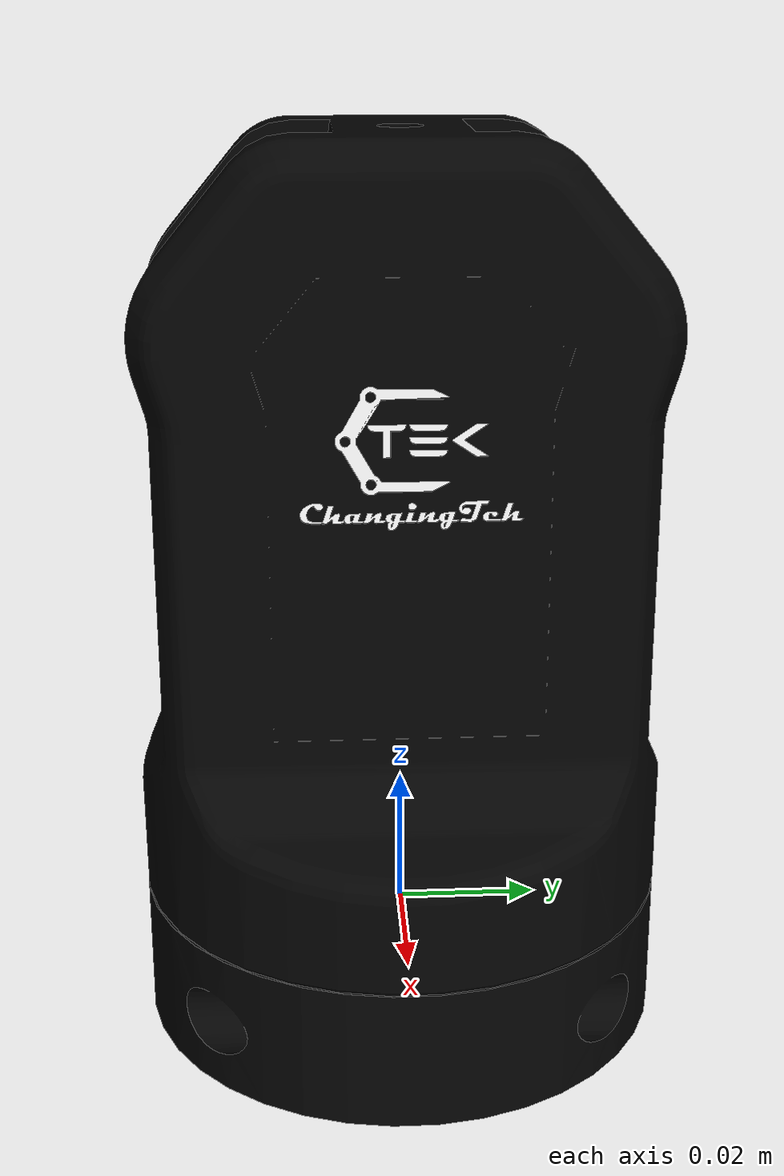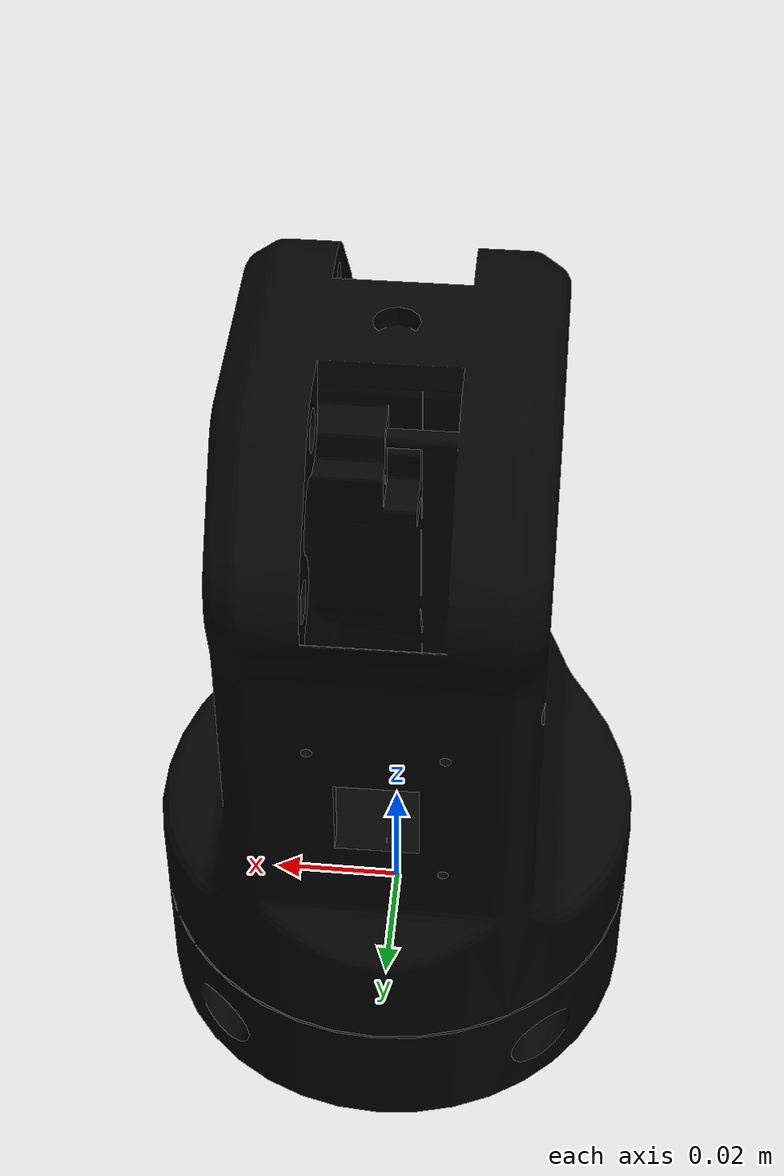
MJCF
<mujoco model="gripper_base">
  <default>
    <default class="visual">
      <geom group="2" type="mesh" contype="0" conaffinity="0"/>
    </default>
    <default class="collision">
      <geom group="3" type="mesh"/>
    </default>
  </default>
  <asset>
    <material name="black_metal" specular="0.5" shininess="0.49" rgba="0.010000 0.010000 0.010000 1.000000"/>
    <material name="silver" specular="0.5" shininess="0.49" rgba="0.800000 0.800000 0.800000 1.000000"/>
    <material name="white" specular="0.5" shininess="0.25" rgba="1.000000 1.000000 1.000000 1.000000"/>
    <mesh name="gripper_base_0" file="gripper_base_0.obj"/>
    <mesh name="gripper_base_1" file="gripper_base_1.obj"/>
    <mesh name="gripper_base_2" file="gripper_base_2.obj"/>
    <mesh name="gripper_base_collision_0" file="gripper_base_collision_0.obj"/>
    <mesh name="gripper_base_collision_1" file="gripper_base_collision_1.obj"/>
    <mesh name="gripper_base_collision_2" file="gripper_base_collision_2.obj"/>
  </asset>
  <worldbody>
    <body name="gripper_base">
      <geom mesh="gripper_base_0" material="white" class="visual"/>
      <geom mesh="gripper_base_1" material="silver" class="visual"/>
      <geom mesh="gripper_base_2" material="black_metal" class="visual"/>
      <geom mesh="gripper_base_collision_0" rgba="0.019325467927007733 0.49361671404975993 0.7865347289233732 1" class="collision"/>
      <geom mesh="gripper_base_collision_1" rgba="0.6845031647218807 0.07718277234338256 0.7971946017698163 1" class="collision"/>
      <geom mesh="gripper_base_collision_2" rgba="0.766132349917895 0.5250094909650439 0.437285010691027 1" class="collision"/>
    </body>
  </worldbody>
</mujoco>
